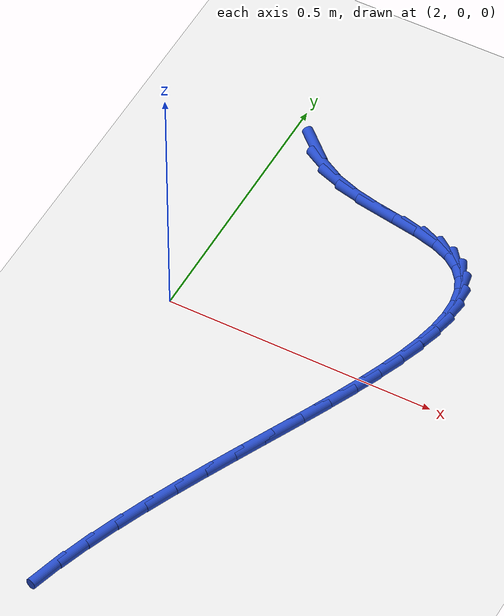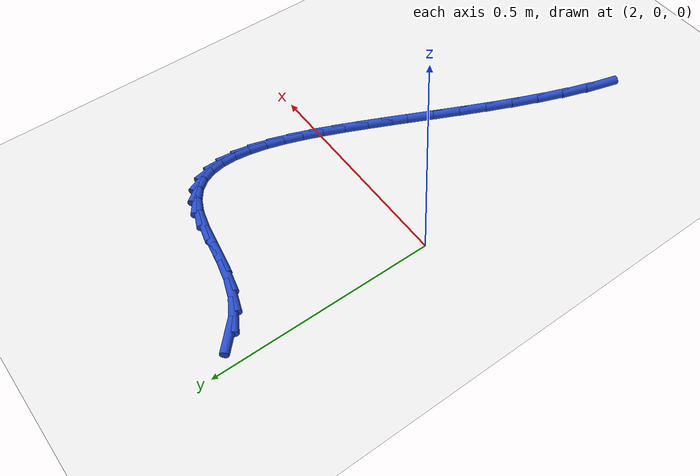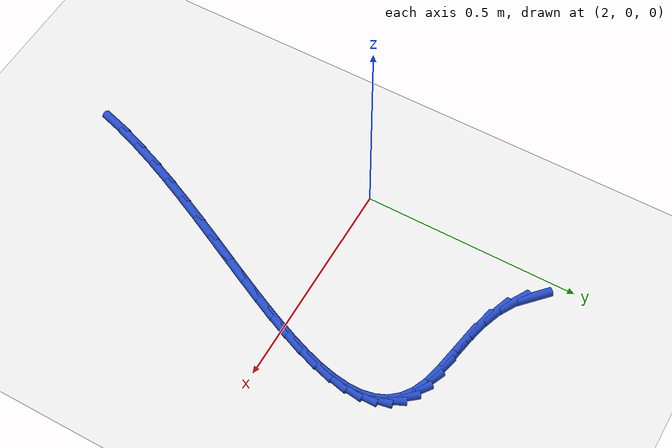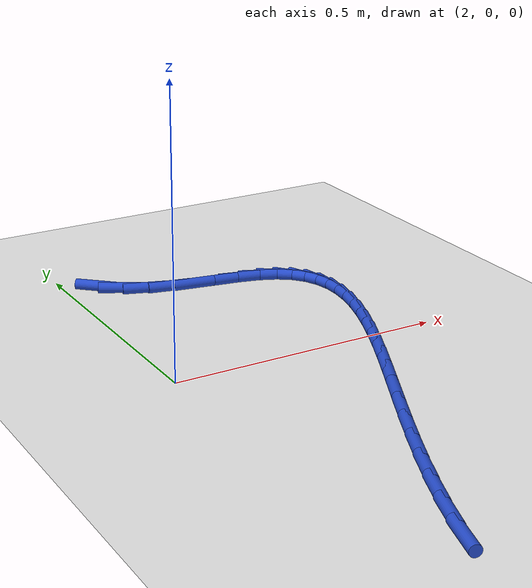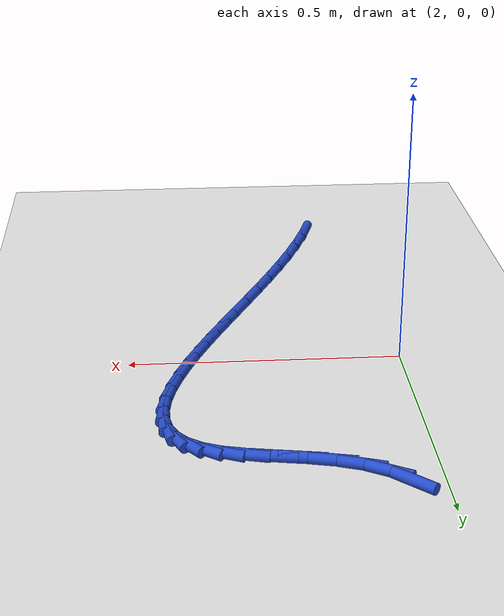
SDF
<sdf version="1.6">
 <world name="default">
  <model name="ground_plane">
   <static>1</static>
   <link name="link">
    <collision name="collision">
     <geometry><plane><normal>0 0 1</normal><size>100 100</size></plane></geometry>
     <surface><friction><ode><mu>100</mu><mu2>50</mu2></ode></friction></surface>
    </collision>
    <visual name="visual">
     <cast_shadows>0</cast_shadows>
     <geometry><plane><normal>0 0 1</normal><size>100 100</size></plane></geometry>
     <material>
      <script><uri>file://media/materials/scripts/gazebo.material</uri><name>Gazebo/WhiteGlow</name></script>
     </material>
    </visual>
   </link>
  </model>
  <model name="line">
   <link name="link_75">
    <pose>2.053575710953338 0.4292596057253028 0.01 0 1.57 -0.7443136556620035</pose>
    <collision name="collision">
     <geometry><cylinder><radius>0.01</radius><length>0.08</length></cylinder></geometry>
    </collision>
    <visual name="visual">
     <material>
      <script><name>Gazebo/Blue</name><uri>file://media/materials/scripts/gazebo.material</uri></script>
     </material>
     <geometry><cylinder><radius>0.01</radius><length>0.08</length></cylinder></geometry>
    </visual>
   </link>
   <link name="link_76">
    <pose>2.0868438479744573 0.3986186218005221 0.01 0 1.57 -0.5100212018672339</pose>
    <collision name="collision">
     <geometry><cylinder><radius>0.01</radius><length>0.08</length></cylinder></geometry>
    </collision>
    <visual name="visual">
     <material>
      <script><name>Gazebo/Blue</name><uri>file://media/materials/scripts/gazebo.material</uri></script>
     </material>
     <geometry><cylinder><radius>0.01</radius><length>0.08</length></cylinder></geometry>
    </visual>
   </link>
   <link name="link_77">
    <pose>2.1264797395076647 0.37644683711900007 0.01 0 1.57 -0.329663217718437</pose>
    <collision name="collision">
     <geometry><cylinder><radius>0.01</radius><length>0.08</length></cylinder></geometry>
    </collision>
    <visual name="visual">
     <material>
      <script><name>Gazebo/Blue</name><uri>file://media/materials/scripts/gazebo.material</uri></script>
     </material>
     <geometry><cylinder><radius>0.01</radius><length>0.08</length></cylinder></geometry>
    </visual>
   </link>
   <link name="link_78">
    <pose>2.170774972781658 0.3612912843485565 0.01 0 1.57 -0.21955067635210143</pose>
    <collision name="collision">
     <geometry><cylinder><radius>0.01</radius><length>0.08</length></cylinder></geometry>
    </collision>
    <visual name="visual">
     <material>
      <script><name>Gazebo/Blue</name><uri>file://media/materials/scripts/gazebo.material</uri></script>
     </material>
     <geometry><cylinder><radius>0.01</radius><length>0.08</length></cylinder></geometry>
    </visual>
   </link>
   <link name="link_79">
    <pose>2.217300474067061 0.35090922683780634 0.01 0 1.57 -0.16789260027877784</pose>
    <collision name="collision">
     <geometry><cylinder><radius>0.01</radius><length>0.08</length></cylinder></geometry>
    </collision>
    <visual name="visual">
     <material>
      <script><name>Gazebo/Blue</name><uri>file://media/materials/scripts/gazebo.material</uri></script>
     </material>
     <geometry><cylinder><radius>0.01</radius><length>0.08</length></cylinder></geometry>
    </visual>
   </link>
   <link name="link_80">
    <pose>2.263626754714917 0.34305747322673774 0.01 0 1.57 -0.17141467375027794</pose>
    <collision name="collision">
     <geometry><cylinder><radius>0.01</radius><length>0.08</length></cylinder></geometry>
    </collision>
    <visual name="visual">
     <material>
      <script><name>Gazebo/Blue</name><uri>file://media/materials/scripts/gazebo.material</uri></script>
     </material>
     <geometry><cylinder><radius>0.01</radius><length>0.08</length></cylinder></geometry>
    </visual>
   </link>
   <link name="link_81">
    <pose>2.3073243260762646 0.3354928321553386 0.01 0 1.57 -0.2415870384076508</pose>
    <collision name="collision">
     <geometry><cylinder><radius>0.01</radius><length>0.08</length></cylinder></geometry>
    </collision>
    <visual name="visual">
     <material>
      <script><name>Gazebo/Blue</name><uri>file://media/materials/scripts/gazebo.material</uri></script>
     </material>
     <geometry><cylinder><radius>0.01</radius><length>0.08</length></cylinder></geometry>
    </visual>
   </link>
   <link name="link_82">
    <pose>2.34596369950215 0.32597211226359746 0.01 0 1.57 -0.40150694102356255</pose>
    <collision name="collision">
     <geometry><cylinder><radius>0.01</radius><length>0.08</length></cylinder></geometry>
    </collision>
    <visual name="visual">
     <material>
      <script><name>Gazebo/Blue</name><uri>file://media/materials/scripts/gazebo.material</uri></script>
     </material>
     <geometry><cylinder><radius>0.01</radius><length>0.08</length></cylinder></geometry>
    </visual>
   </link>
   <link name="link_83">
    <pose>2.3775047148390116 0.3125807223928332 0.01 0 1.57 -0.6249965864616291</pose>
    <collision name="collision">
     <geometry><cylinder><radius>0.01</radius><length>0.08</length></cylinder></geometry>
    </collision>
    <visual name="visual">
     <material>
      <script><name>Gazebo/Blue</name><uri>file://media/materials/scripts/gazebo.material</uri></script>
     </material>
     <geometry><cylinder><radius>0.01</radius><length>0.08</length></cylinder></geometry>
    </visual>
   </link>
   <link name="link_84">
    <pose>2.401832296421901 0.29502887706391967 0.01 0 1.57 -0.8850260160110283</pose>
    <collision name="collision">
     <geometry><cylinder><radius>0.01</radius><length>0.08</length></cylinder></geometry>
    </collision>
    <visual name="visual">
     <material>
      <script><name>Gazebo/Blue</name><uri>file://media/materials/scripts/gazebo.material</uri></script>
     </material>
     <geometry><cylinder><radius>0.01</radius><length>0.08</length></cylinder></geometry>
    </visual>
   </link>
   <link name="link_85">
    <pose>2.419425313348821 0.2735280907821698 0.01 0 1.57 -1.148589742444939</pose>
    <collision name="collision">
     <geometry><cylinder><radius>0.01</radius><length>0.08</length></cylinder></geometry>
    </collision>
    <visual name="visual">
     <material>
      <script><name>Gazebo/Blue</name><uri>file://media/materials/scripts/gazebo.material</uri></script>
     </material>
     <geometry><cylinder><radius>0.01</radius><length>0.08</length></cylinder></geometry>
    </visual>
   </link>
   <link name="link_86">
    <pose>2.430762804339405 0.2482900212165841 0.01 0 1.57 -1.3798184031001295</pose>
    <collision name="collision">
     <geometry><cylinder><radius>0.01</radius><length>0.08</length></cylinder></geometry>
    </collision>
    <visual name="visual">
     <material>
      <script><name>Gazebo/Blue</name><uri>file://media/materials/scripts/gazebo.material</uri></script>
     </material>
     <geometry><cylinder><radius>0.01</radius><length>0.08</length></cylinder></geometry>
    </visual>
   </link>
   <link name="link_87">
    <pose>2.436323808113289 0.21952632603616243 0.01 0 1.57 -1.5625803496658572</pose>
    <collision name="collision">
     <geometry><cylinder><radius>0.01</radius><length>0.08</length></cylinder></geometry>
    </collision>
    <visual name="visual">
     <material>
      <script><name>Gazebo/Blue</name><uri>file://media/materials/scripts/gazebo.material</uri></script>
     </material>
     <geometry><cylinder><radius>0.01</radius><length>0.08</length></cylinder></geometry>
    </visual>
   </link>
   <link name="link_88">
    <pose>2.436587363390108 0.18744866290990464 0.01 0 1.57 1.442039660719787</pose>
    <collision name="collision">
     <geometry><cylinder><radius>0.01</radius><length>0.08</length></cylinder></geometry>
    </collision>
    <visual name="visual">
     <material>
      <script><name>Gazebo/Blue</name><uri>file://media/materials/scripts/gazebo.material</uri></script>
     </material>
     <geometry><cylinder><radius>0.01</radius><length>0.08</length></cylinder></geometry>
    </visual>
   </link>
   <link name="link_89">
    <pose>2.432032508889498 0.15226868950681138 0.01 0 1.57 1.341288413245904</pose>
    <collision name="collision">
     <geometry><cylinder><radius>0.01</radius><length>0.08</length></cylinder></geometry>
    </collision>
    <visual name="visual">
     <material>
      <script><name>Gazebo/Blue</name><uri>file://media/materials/scripts/gazebo.material</uri></script>
     </material>
     <geometry><cylinder><radius>0.01</radius><length>0.08</length></cylinder></geometry>
    </visual>
   </link>
   <link name="link_90">
    <pose>2.4231382833310944 0.11419806349588252 0.01 0 1.57 1.2674576491511873</pose>
    <collision name="collision">
     <geometry><cylinder><radius>0.01</radius><length>0.08</length></cylinder></geometry>
    </collision>
    <visual name="visual">
     <material>
      <script><name>Gazebo/Blue</name><uri>file://media/materials/scripts/gazebo.material</uri></script>
     </material>
     <geometry><cylinder><radius>0.01</radius><length>0.08</length></cylinder></geometry>
    </visual>
   </link>
   <link name="link_91">
    <pose>2.4103837254345297 0.07344844254611796 0.01 0 1.57 1.2134567661412345</pose>
    <collision name="collision">
     <geometry><cylinder><radius>0.01</radius><length>0.08</length></cylinder></geometry>
    </collision>
    <visual name="visual">
     <material>
      <script><name>Gazebo/Blue</name><uri>file://media/materials/scripts/gazebo.material</uri></script>
     </material>
     <geometry><cylinder><radius>0.01</radius><length>0.08</length></cylinder></geometry>
    </visual>
   </link>
   <link name="link_92">
    <pose>2.3942478739194413 0.03023148432651708 0.01 0 1.57 1.1742979963614477</pose>
    <collision name="collision">
     <geometry><cylinder><radius>0.01</radius><length>0.08</length></cylinder></geometry>
    </collision>
    <visual name="visual">
     <material>
      <script><name>Gazebo/Blue</name><uri>file://media/materials/scripts/gazebo.material</uri></script>
     </material>
     <geometry><cylinder><radius>0.01</radius><length>0.08</length></cylinder></geometry>
    </visual>
   </link>
   <link name="link_93">
    <pose>2.375209767505465 -0.015241153493918254 0.01 0 1.57 1.1465637092408427</pose>
    <collision name="collision">
     <geometry><cylinder><radius>0.01</radius><length>0.08</length></cylinder></geometry>
    </collision>
    <visual name="visual">
     <material>
      <script><name>Gazebo/Blue</name><uri>file://media/materials/scripts/gazebo.material</uri></script>
     </material>
     <geometry><cylinder><radius>0.01</radius><length>0.08</length></cylinder></geometry>
    </visual>
   </link>
   <link name="link_94">
    <pose>2.3537484449122337 -0.06275781324618894 0.01 0 1.57 1.127931557650248</pose>
    <collision name="collision">
     <geometry><cylinder><radius>0.01</radius><length>0.08</length></cylinder></geometry>
    </collision>
    <visual name="visual">
     <material>
      <script><name>Gazebo/Blue</name><uri>file://media/materials/scripts/gazebo.material</uri></script>
     </material>
     <geometry><cylinder><radius>0.01</radius><length>0.08</length></cylinder></geometry>
    </visual>
   </link>
   <link name="link_95">
    <pose>2.3303429448593835 -0.1121068372612949 0.01 0 1.57 1.1168357584748443</pose>
    <collision name="collision">
     <geometry><cylinder><radius>0.01</radius><length>0.08</length></cylinder></geometry>
    </collision>
    <visual name="visual">
     <material>
      <script><name>Gazebo/Blue</name><uri>file://media/materials/scripts/gazebo.material</uri></script>
     </material>
     <geometry><cylinder><radius>0.01</radius><length>0.08</length></cylinder></geometry>
    </visual>
   </link>
   <link name="link_96">
    <pose>2.305472306066551 -0.1630765678702359 0.01 0 1.57 1.1122423114091364</pose>
    <collision name="collision">
     <geometry><cylinder><radius>0.01</radius><length>0.08</length></cylinder></geometry>
    </collision>
    <visual name="visual">
     <material>
      <script><name>Gazebo/Blue</name><uri>file://media/materials/scripts/gazebo.material</uri></script>
     </material>
     <geometry><cylinder><radius>0.01</radius><length>0.08</length></cylinder></geometry>
    </visual>
   </link>
   <link name="link_97">
    <pose>2.2796155672533702 -0.21545534740401198 0.01 0 1.57 1.1135041975573743</pose>
    <collision name="collision">
     <geometry><cylinder><radius>0.01</radius><length>0.08</length></cylinder></geometry>
    </collision>
    <visual name="visual">
     <material>
      <script><name>Gazebo/Blue</name><uri>file://media/materials/scripts/gazebo.material</uri></script>
     </material>
     <geometry><cylinder><radius>0.01</radius><length>0.08</length></cylinder></geometry>
    </visual>
   </link>
   <link name="link_98">
    <pose>2.253251767139475 -0.26903151819362403 0.01 0 1.57 1.1202701334649616</pose>
    <collision name="collision">
     <geometry><cylinder><radius>0.01</radius><length>0.08</length></cylinder></geometry>
    </collision>
    <visual name="visual">
     <material>
      <script><name>Gazebo/Blue</name><uri>file://media/materials/scripts/gazebo.material</uri></script>
     </material>
     <geometry><cylinder><radius>0.01</radius><length>0.08</length></cylinder></geometry>
    </visual>
   </link>
   <link name="link_99">
    <pose>2.2268599444445027 -0.32359342257006984 0.01 0 1.57 1.132429160654622</pose>
    <collision name="collision">
     <geometry><cylinder><radius>0.01</radius><length>0.08</length></cylinder></geometry>
    </collision>
    <visual name="visual">
     <material>
      <script><name>Gazebo/Blue</name><uri>file://media/materials/scripts/gazebo.material</uri></script>
     </material>
     <geometry><cylinder><radius>0.01</radius><length>0.08</length></cylinder></geometry>
    </visual>
   </link>
   <link name="link_100">
    <pose>2.2009191378880875 -0.3789294028643504 0.01 0 1.57 1.150079712792438</pose>
    <collision name="collision">
     <geometry><cylinder><radius>0.01</radius><length>0.08</length></cylinder></geometry>
    </collision>
    <visual name="visual">
     <material>
      <script><name>Gazebo/Blue</name><uri>file://media/materials/scripts/gazebo.material</uri></script>
     </material>
     <geometry><cylinder><radius>0.01</radius><length>0.08</length></cylinder></geometry>
    </visual>
   </link>
   <link name="link_101">
    <pose>2.1759083861898647 -0.4348278014074658 0.01 0 1.57 1.1735157969655068</pose>
    <collision name="collision">
     <geometry><cylinder><radius>0.01</radius><length>0.08</length></cylinder></geometry>
    </collision>
    <visual name="visual">
     <material>
      <script><name>Gazebo/Blue</name><uri>file://media/materials/scripts/gazebo.material</uri></script>
     </material>
     <geometry><cylinder><radius>0.01</radius><length>0.08</length></cylinder></geometry>
    </visual>
   </link>
   <link name="link_102">
    <pose>2.1523067280694694 -0.4910769605304155 0.01 0 1.57 1.2032250125403066</pose>
    <collision name="collision">
     <geometry><cylinder><radius>0.01</radius><length>0.08</length></cylinder></geometry>
    </collision>
    <visual name="visual">
     <material>
      <script><name>Gazebo/Blue</name><uri>file://media/materials/scripts/gazebo.material</uri></script>
     </material>
     <geometry><cylinder><radius>0.01</radius><length>0.08</length></cylinder></geometry>
    </visual>
   </link>
   <link name="link_103">
    <pose>2.130593202246536 -0.5474652225642009 0.01 0 1.57 1.2398935221228524</pose>
    <collision name="collision">
     <geometry><cylinder><radius>0.01</radius><length>0.08</length></cylinder></geometry>
    </collision>
    <visual name="visual">
     <material>
      <script><name>Gazebo/Blue</name><uri>file://media/materials/scripts/gazebo.material</uri></script>
     </material>
     <geometry><cylinder><radius>0.01</radius><length>0.08</length></cylinder></geometry>
    </visual>
   </link>
   <link name="link_104">
    <pose>2.1112468474407016 -0.6037809298398197 0.01 0 1.57 1.2844115711892026</pose>
    <collision name="collision">
     <geometry><cylinder><radius>0.01</radius><length>0.08</length></cylinder></geometry>
    </collision>
    <visual name="visual">
     <material>
      <script><name>Gazebo/Blue</name><uri>file://media/materials/scripts/gazebo.material</uri></script>
     </material>
     <geometry><cylinder><radius>0.01</radius><length>0.08</length></cylinder></geometry>
    </visual>
   </link>
  </model>
 </world>
</sdf>
